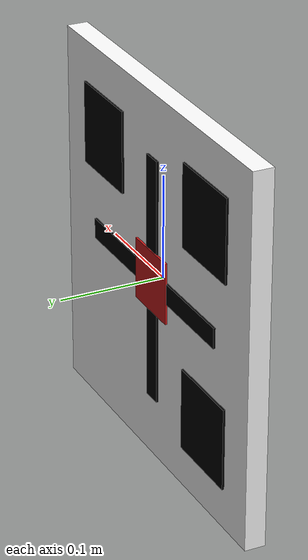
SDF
<?xml version="1.0"?>
<sdf version="1.6">
  <model name="vision_target_board">
    <static>true</static>
    <link name="board_link">
      <collision name="board_collision">
        <geometry>
          <box>
            <size>0.36 0.02 0.36</size>
          </box>
        </geometry>
      </collision>

      <visual name="board_background">
        <geometry>
          <box>
            <size>0.36 0.02 0.36</size>
          </box>
        </geometry>
        <material>
          <ambient>1 1 1 1</ambient>
          <diffuse>1 1 1 1</diffuse>
        </material>
      </visual>

      <visual name="finder_top_left">
        <pose>-0.10 0.011 0.10 0 0 0</pose>
        <geometry>
          <box>
            <size>0.08 0.002 0.08</size>
          </box>
        </geometry>
        <material>
          <ambient>0 0 0 1</ambient>
          <diffuse>0 0 0 1</diffuse>
        </material>
      </visual>

      <visual name="finder_top_right">
        <pose>0.10 0.011 0.10 0 0 0</pose>
        <geometry>
          <box>
            <size>0.08 0.002 0.08</size>
          </box>
        </geometry>
        <material>
          <ambient>0 0 0 1</ambient>
          <diffuse>0 0 0 1</diffuse>
        </material>
      </visual>

      <visual name="finder_bottom_left">
        <pose>-0.10 0.011 -0.10 0 0 0</pose>
        <geometry>
          <box>
            <size>0.08 0.002 0.08</size>
          </box>
        </geometry>
        <material>
          <ambient>0 0 0 1</ambient>
          <diffuse>0 0 0 1</diffuse>
        </material>
      </visual>

      <visual name="center_mark">
        <pose>0.0 0.012 0.0 0 0 0</pose>
        <geometry>
          <box>
            <size>0.06 0.002 0.06</size>
          </box>
        </geometry>
        <material>
          <ambient>0.8 0.1 0.1 1</ambient>
          <diffuse>0.8 0.1 0.1 1</diffuse>
        </material>
      </visual>

      <visual name="cross_vertical">
        <pose>0.0 0.011 0.0 0 0 0</pose>
        <geometry>
          <box>
            <size>0.02 0.002 0.24</size>
          </box>
        </geometry>
        <material>
          <ambient>0 0 0 1</ambient>
          <diffuse>0 0 0 1</diffuse>
        </material>
      </visual>

      <visual name="cross_horizontal">
        <pose>0.0 0.011 0.0 0 0 0</pose>
        <geometry>
          <box>
            <size>0.24 0.002 0.02</size>
          </box>
        </geometry>
        <material>
          <ambient>0 0 0 1</ambient>
          <diffuse>0 0 0 1</diffuse>
        </material>
      </visual>
    </link>
  </model>
</sdf>
